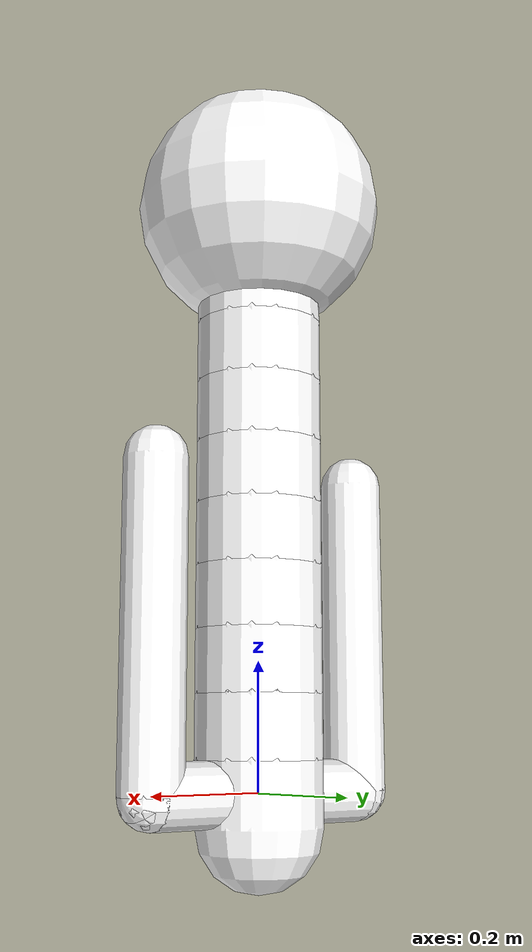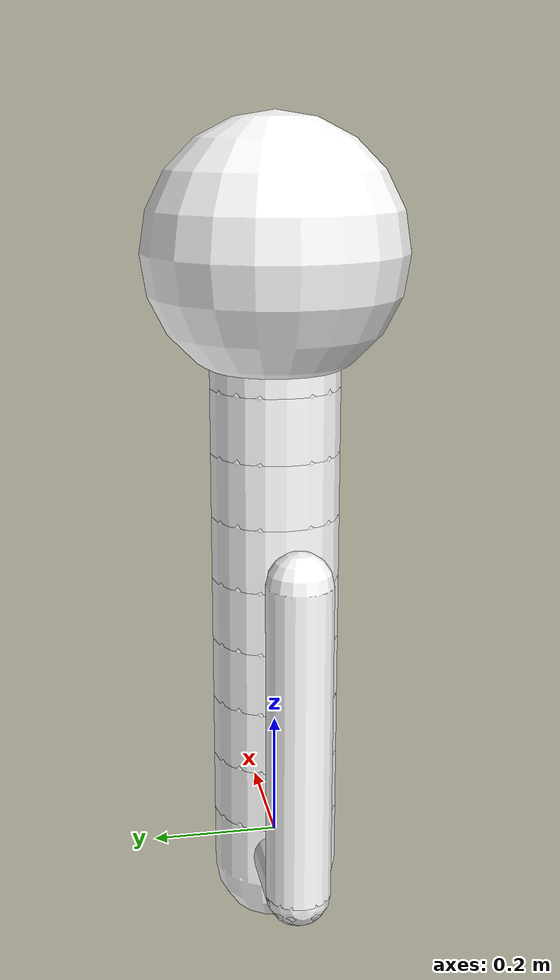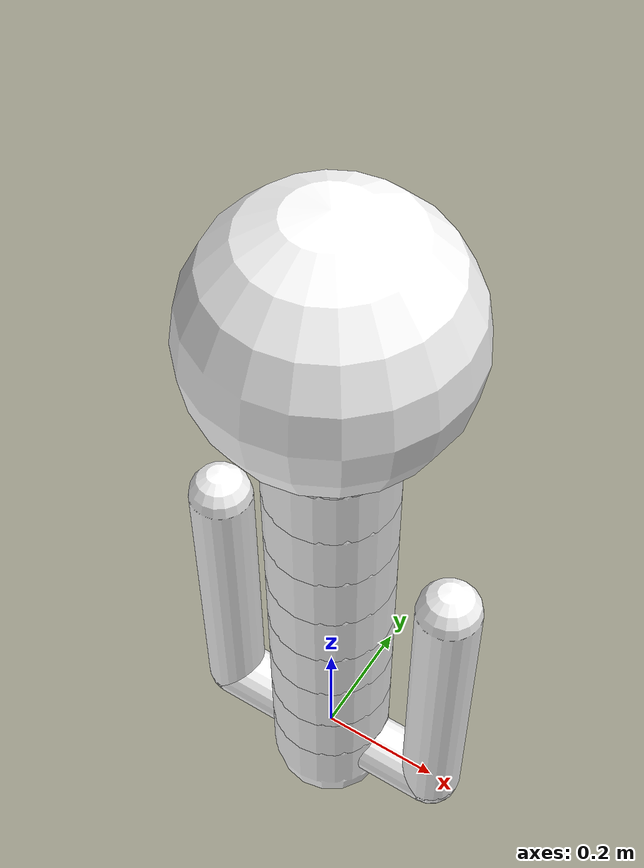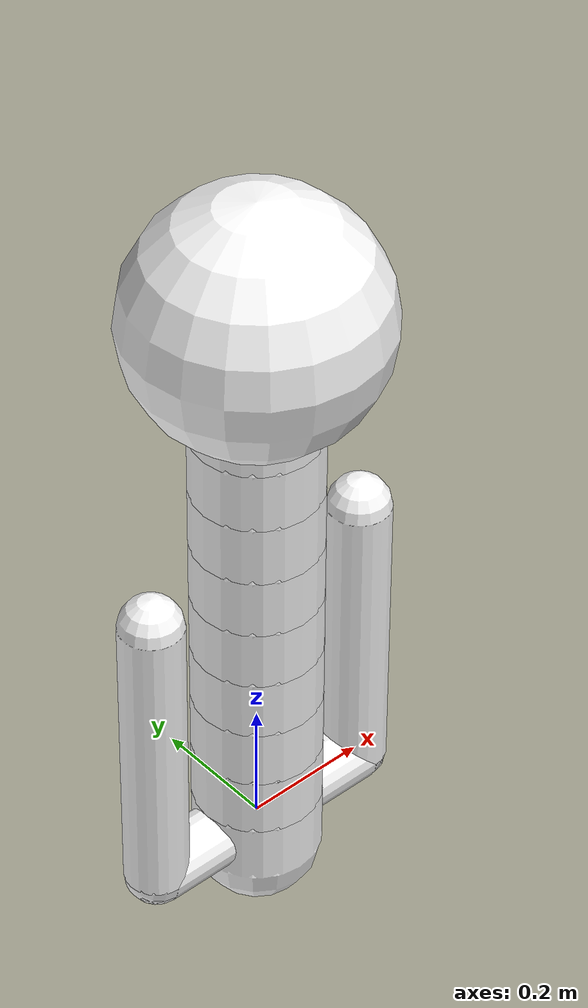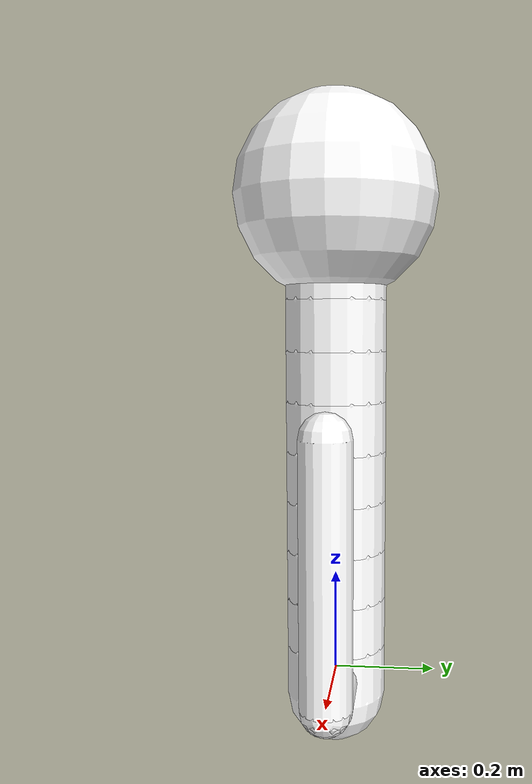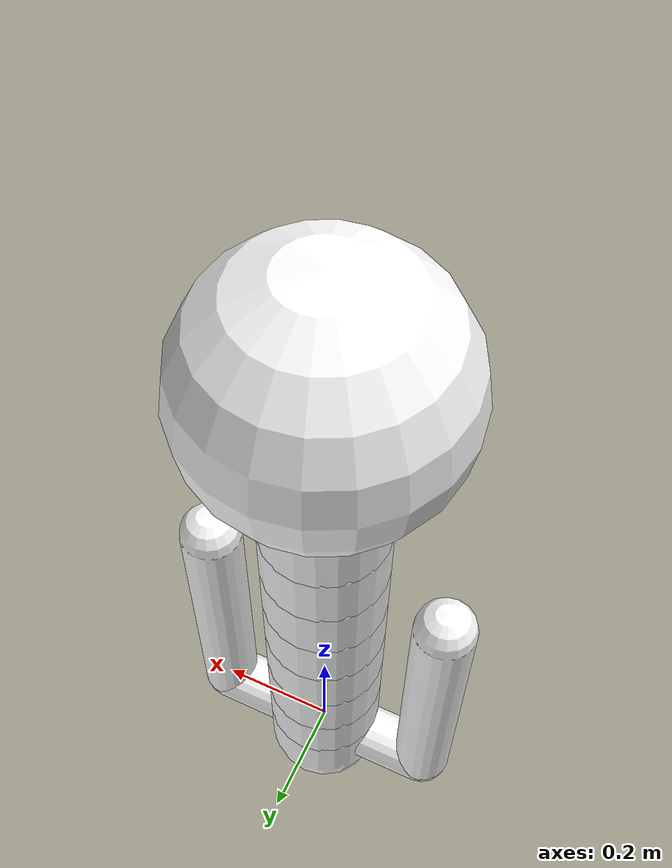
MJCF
<mujoco model="kendama">
  <compiler coordinate="local" inertiafromgeom="true"/>
  <default>
    <joint damping="0.05" stiffness="0.1"/>
    <geom contype="3" conaffinity="3" friction="1 0.1 0.1" rgba="0.7 0.7 0 1"/>
  </default>
  <option gravity="1e-5 0 -9.81" integrator="RK4" timestep="0.001"/>
  <size nstack="3000"/>
  <worldbody>
    <camera name="rgb" mode="fixed" pos="0 4 0.0" euler="-90 0 180"/>
    <!-- pos here acts like the origin of the cup -->
    <body name="cup" pos="0 0 0">
      <joint name="cup_sliderx" axis="1 0 0" limited="true" margin="0.01" pos="0 0 0" range="-20 20" stiffness="0" type="slide"/>
      <joint name="cup_sliderz" axis="0 0 1" limited="true" margin="0.01" pos="0 0 0" range="-0.1 0.1" stiffness="0" type="slide"/>
      <geom name="cup_base" type="capsule" pos="0 0 0" quat="0.707 0 0.707 0" size="0.05 0.2" rgba="1 1 1 1" mass=".5"/>
      <geom name="cup_left_wall" type="capsule" pos="0.2 0 0.25" quat="1 0 0 0" size="0.05 0.25" rgba="1 1 1 1" mass=".5"/>
      <geom name="cup_right_wall" type="capsule" pos="-0.2 0 0.25" quat="1 0 0 0" size="0.05 0.25" rgba="1 1 1 1" mass=".5"/>
      <body name="pole" pos="0 0 -0.05">
        <joint axis="0 1 0" name="hinge" pos="0 0 0" type="hinge" stiffness="0"/>
        <geom fromto="0 0 0 0 0 0.1" name="gpole1" rgba="1 1 1 1" size="0.1 0.05" mass="0.05" type="capsule"/>
        <body name="pole2" pos="0 0 0.1">
          <joint axis="0 1 0" name="hinge2" pos="0 0 0" type="hinge"/>
          <geom fromto="0 0 0 0 0 0.1" name="gpole2" rgba="1 1 1 1" size="0.1 0.05" mass="0.05" type="capsule"/>
          <body name="pole3" pos="0 0 0.1">
            <joint axis="0 1 0" name="hinge3" pos="0 0 0" type="hinge"/>
            <geom fromto="0 0 0 0 0 0.1" name="gpole3" rgba="1 1 1 1" size="0.1 0.05" mass="0.05" type="capsule"/>
            <body name="pole4" pos="0 0 0.1">
              <joint axis="0 1 0" name="hinge4" pos="0 0 0" type="hinge"/>
              <geom fromto="0 0 0 0 0 0.1" name="gpole4" rgba="1 1 1 1" size="0.1 0.05" mass="0.05" type="capsule"/>
               <body name="pole5" pos="0 0 0.1">
              <joint axis="0 1 0" name="hinge5" pos="0 0 0" type="hinge"/>
              <geom fromto="0 0 0 0 0 0.1" name="gpole5" rgba="1 1 1 1" size="0.1 0.05" mass="0.05" type="capsule"/>
                 <body name="pole6" pos="0 0 0.1">
                   <joint axis="0 1 0" name="hinge6" pos="0 0 0" type="hinge"/>
                   <geom fromto="0 0 0 0 0 0.1" name="gpole6" rgba="1 1 1 1" size="0.1 0.05" mass="0.05" type="capsule"/>
                     <body name="pole7" pos="0 0 0.1">
                      <joint axis="0 1 0" name="hinge7" pos="0 0 0" type="hinge"/>
                      <geom fromto="0 0 0 0 0 0.1" name="gpole7" rgba="1 1 1 1" size="0.1 0.05" mass="0.05" type="capsule"/>
                        <body name="pole8" pos="0 0 0.1">
                        <joint axis="0 1 0" name="hinge8" pos="0 0 0" type="hinge"/>
                        <geom fromto="0 0 0 0 0 0.1" name="gpole8" rgba="1 1 1 1" size="0.1 0.05" mass="0.05" type="capsule"/>
                        <body name="pole9" pos="0 0 0.1">
                          <joint axis="0 1 0" name="hinge9" pos="0 0 0" type="hinge"/>
                          <geom fromto="0 0 0 0 0 0.1" name="gpole9" rgba="1 1 1 1" size="0.1 0.05" mass="0.05" type="capsule"/>
                            <body name="pole10" pos="0 0 0.1">
                              <joint axis="0 1 0" name="hinge10" pos="0 0 0" type="hinge"/>
                              <geom fromto="0 0 0 0 0 0.1" name="gpole10" rgba="1 1 1 1" size="0.1 0.05" mass="0.05" type="capsule"/>
                              <body name="conker" pos="0 0 0.1">
                                <geom type="sphere" rgba="1 1 1 1" mass="1." size="0.2 0.2" name="gmass" contype="3" conaffinity="3"/>
                                <site name="tip" pos="0 0 0." size="0.01 0.01"/>
                              </body>
                            </body>
                          </body>
                        </body>
                      </body>
                      </body>
                    </body>
                  </body>
                </body>
            </body>
          </body>
        </body>
    <body name="target" pos="-0.75 0 -0.75">
      <geom rgba="0 0 0 0" size="0.1 0.1" mass="1." type="sphere" name="gtarget" conaffinity="2" contype="2"/>
    </body>
  </worldbody>
  <actuator>
    <motor joint="cup_sliderx" name="cup_actuatorx" ctrllimited="true" ctrlrange="-1 1" gear="40"/>
    <motor joint="cup_sliderz" name="cup_actuatory" ctrllimited="true" ctrlrange="-.1 .1" gear="40"/>
  </actuator>
</mujoco>
